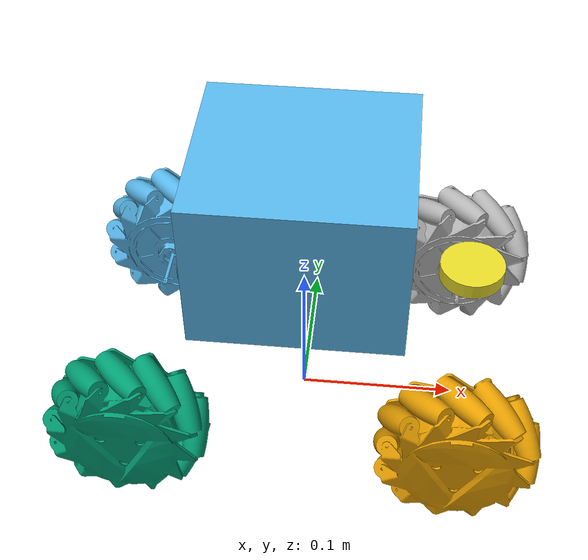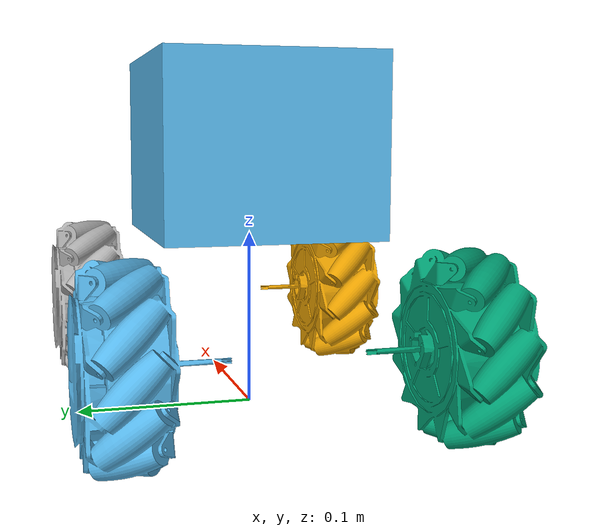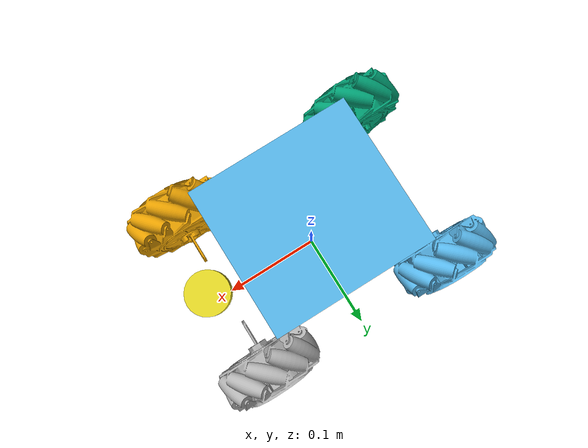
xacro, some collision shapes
<?xml version="1.0"?>

<robot name="limo_four_diff" xmlns:xacro="http://ros.org/wiki/xacro">

    <xacro:arg name="robot_name" default="box_bot"/>
    <xacro:property name="general_robot_name" value="$(arg robot_name)"/>

    <xacro:include filename="$(find limo_description)/urdf/limo_xacro_omni.xacro" />

    <!-- Variables -->
    <xacro:property name="M_PI" value="3.14159"/>

    <!-- Vehicle Geometries -->
    <xacro:property name="base_x_size" value="0.13" />
    <xacro:property name="base_y_size" value="0.12" />
    <xacro:property name="base_z_size" value="0.1" />

    <xacro:property name="wheelbase" value="0.2"/>
    <xacro:property name="track" value="0.13"/>
    <xacro:property name="wheel_vertical_offset" value="-0.10" />
    <xacro:property name="base_mass" value="2.1557"/>

    <xacro:property name="wheel_length" value="0.001" />
    <xacro:property name="wheel_radius" value="0.045" />
  <link name="base_footprint"/>

  <joint name="base_joint" type="fixed">
    <parent link="base_footprint"/>
    <child link="base_link"/>
    <origin xyz="0.0 0.0 0.15" rpy="0 0 0"/>
  </joint>
    <!-- Base link -->
    <link name="base_link">
        <visual>
            <origin xyz="0 0 -0.15" rpy="0 0 1.57" />
            <geometry>
                <mesh filename="package://limo_description/meshes/limo_optimal.dae" scale="1 1 1"/>
            </geometry>
        </visual>
        <collision>
            <origin xyz="0 0 0" rpy="0 0 0" />
          <geometry>
              <box size="${base_x_size} ${base_y_size} ${base_z_size}"/>
          </geometry>
        </collision>
    </link>

    <link name="inertial_link">
        <inertial>
            <origin xyz="0.0 0.0 0.0" />
            <mass value="${base_mass}" />
            <inertia ixx="0.0043832566666666675" ixy="0" ixz="0"
                     iyy="0.004832360833333334" iyz="0"
                     izz="0.005622784166666667" />
        </inertial>
    </link>

    <joint name="inertial_joint" type="fixed">
        <origin xyz="0 0 0" rpy="0 0 0" />
        <parent link="base_link" />
        <child link="inertial_link" />
    </joint>

    <xacro:limo_laser parent_prefix="base_link" frame_prefix="laser">
        <origin xyz="0.103 0 -0.034" rpy="0 0 0"/>
    </xacro:limo_laser>

    <xacro:limo_depth_camera parent_prefix="base_link" frame_prefix="depth_camera">
        <origin xyz="0.084 0 0.026" rpy="0 0 0"/>
    </xacro:limo_depth_camera>

    <xacro:limo_imu parent_prefix="base_link" frame_prefix="imu">
        <origin xyz="0.0 0 -0.1" rpy="0 0 0"/>
    </xacro:limo_imu>

    <xacro:limo_wheel parent_prefix="base_link" wheel_prefix="front_left" reflect="1" fixed_on="false">
        <origin xyz="${wheelbase/2} ${track/2} ${wheel_vertical_offset}" rpy="0 0  0" />
    </xacro:limo_wheel>

    <xacro:limo_wheel parent_prefix="base_link" wheel_prefix="front_right" reflect="-1" fixed_on="false">
        <origin xyz="${wheelbase/2} ${-track/2} ${wheel_vertical_offset}" rpy="${M_PI} 0 0" />
    </xacro:limo_wheel>

    <xacro:limo_wheel parent_prefix="base_link" wheel_prefix="rear_left" reflect="1" fixed_on="false">
        <origin xyz="${-wheelbase/2} ${track/2} ${wheel_vertical_offset}" rpy="0 0 0" />
    </xacro:limo_wheel>

    <xacro:limo_wheel parent_prefix="base_link" wheel_prefix="rear_right" reflect="-1" fixed_on="false">
        <origin xyz="${-wheelbase/2} ${-track/2} ${wheel_vertical_offset}" rpy="${M_PI} 0 0" />
    </xacro:limo_wheel>

    <gazebo reference="imu_link">
    <gravity>true</gravity>
    <sensor name="twr_imu_$(arg robot_name)" type="imu">
      <always_on>true</always_on>
      <update_rate>100</update_rate>
      <visualize>true</visualize>
      <imu>
        <orientation>
          <x>
            <noise type="gaussian">
              <mean>0.0</mean>
              <stddev>2e-3</stddev>
            </noise>
          </x>
          <y>
            <noise type="gaussian">
              <mean>0.0</mean>
              <stddev>2e-3</stddev>
            </noise>
          </y>
          <z>
            <noise type="gaussian">
              <mean>0.0</mean>
              <stddev>2e-3</stddev>
            </noise>
          </z>
        </orientation>
        <angular_velocity>
          <x>
            <noise type="gaussian">
              <mean>0.0</mean>
              <stddev>2e-4</stddev>
            </noise>
          </x>
          <y>
            <noise type="gaussian">
              <mean>0.0</mean>
              <stddev>2e-4</stddev>
            </noise>
          </y>
          <z>
            <noise type="gaussian">
              <mean>0.0</mean>
              <stddev>2e-4</stddev>
            </noise>
          </z>
        </angular_velocity>
        <linear_acceleration>
          <x>
            <noise type="gaussian">
              <mean>0.0</mean>
              <stddev>1.7e-2</stddev>
            </noise>
          </x>
          <y>
            <noise type="gaussian">
              <mean>0.0</mean>
              <stddev>1.7e-2</stddev>
            </noise>
          </y>
          <z>
            <noise type="gaussian">
              <mean>0.0</mean>
              <stddev>1.7e-2</stddev>
            </noise>
          </z>
        </linear_acceleration>
      </imu>
      <plugin name="two_wheeled_robot_imu_$(arg robot_name)" filename="libgazebo_ros_imu_sensor.so">
        <initial_orientation_as_reference>false</initial_orientation_as_reference>
        <frame_name>imu_link</frame_name>
        <ros>
          <remapping>~/out:=$(arg robot_name)/imu</remapping>
        </ros>
      </plugin>
    </sensor>
</gazebo>
<gazebo reference="laser_link">
    <sensor name="laser_$(arg robot_name)" type="ray">
      <always_on>true</always_on>
      <visualize>false</visualize>
      <update_rate>10</update_rate>
      <ray>
        <scan>
          <horizontal>
            <samples>120</samples>
            <resolution>1.000000</resolution>
            <min_angle>-3.14159</min_angle>
            <max_angle>3.14159</max_angle>
          </horizontal>
        </scan>
        <range>
          <min>0.3</min>
          <max>15.0</max>
          <resolution>0.015</resolution>
        </range>
        <noise>
          <type>gaussian</type>
          <mean>0.0</mean>
          <stddev>0.01</stddev>
        </noise>
      </ray>
      <plugin name="scan_$(arg robot_name)" filename="libgazebo_ros_ray_sensor.so">
        <ros>
          <remapping>~/out:=$(arg robot_name)/scan</remapping>
        </ros>
        <output_type>sensor_msgs/LaserScan</output_type>
        <frame_name>laser_link</frame_name>
      </plugin>
    </sensor>
  </gazebo>

    <gazebo reference="front_left_wheel_link">
        <mu1>0</mu1>
        <mu2>0</mu2>
        <kp>10000000.0</kp>
        <kd>1.0</kd>
        <minDepth>0.01</minDepth>
        <fdir1>1 0 0</fdir1>
        <maxContacts value="4"/>
    </gazebo>
    <gazebo reference="front_right_wheel_link">
        <mu1>0</mu1>
        <mu2>0</mu2>
        <kp>10000000.0</kp>
        <kd>1.0</kd>
        <minDepth>0.01</minDepth>
        <fdir1>1 0 0</fdir1>
        <maxContacts value="4"/>
    </gazebo>
    <gazebo reference="rear_left_wheel_link">
        <mu1>0</mu1>
        <mu2>0</mu2>
        <kp>10000000.0</kp>
        <kd>1.0</kd>
        <minDepth>0.01</minDepth>
        <fdir1>1 0 0</fdir1>
        <maxContacts value="4"/>
    </gazebo>
    <gazebo reference="rear_right_wheel_link">
        <mu1>0</mu1>
        <mu2>0</mu2>
        <kp>10000000.0</kp>
        <kd>1.0</kd>
        <minDepth>0.01</minDepth>
        <fdir1>1 0 0</fdir1>
        <maxContacts value="4"/>
    </gazebo>

    <gazebo reference="center_left_wheel_link">
        <mu1>0.0001</mu1>
        <mu2>0.0001</mu2>
        <kp>10000000.0</kp>
        <kd>1.0</kd>
        <minDepth>0.01</minDepth>
        <fdir1>1 0 0</fdir1>
        <maxContacts value="4"/>
    </gazebo>
    <gazebo reference="center_right_wheel_link">
        <mu1>0.0001</mu1>
        <mu2>0.0001</mu2>
        <kp>10000000.0</kp>
        <kd>1.0</kd>
        <minDepth>0.01</minDepth>
        <fdir1>1 0 0</fdir1>
        <maxContacts value="4"/>
    </gazebo>

    <gazebo>
      <plugin name="object_controller_$(arg robot_name)" filename="libgazebo_ros_planar_move.so">

        <commandTopic>cmd_vel</commandTopic>
        <odometryTopic>odom</odometryTopic>
        <robotNamespace>$(arg robot_name)</robotNamespace>

        <!-- Set control loop update rate -->
        <odometryRate>100</odometryRate>
        <!-- Set odom publish rate -->
        <publish_rate>100</publish_rate>

        <!-- Set if odom required -->
        <publish_odom>true</publish_odom>
        <publish_odom_tf>true</publish_odom_tf>

        <!-- Frame IDs -->
        <odometryFrame>odom</odometryFrame>
        <robotBaseFrame>base_link</robotBaseFrame>

        <!-- Set odom covariance -->
        <covariance_x>0.0001</covariance_x>
        <covariance_y>0.0001</covariance_y>
        <covariance_yaw>0.01</covariance_yaw>

        <ros>
            <namespace>$(arg robot_name)</namespace>
            <argument>--ros-args --remap /cmd_vel:=/$(arg robot_name)/cmd_vel /odom:=/$(arg robot_name)/odom</argument>
        </ros>

      </plugin>
    </gazebo>

    <gazebo>
        <plugin name="four_diff_controller_$(arg robot_name)" filename="libgazebo_ros_diff_drive.so">

        <update_rate>50</update_rate>
        <num_wheel_pairs>2</num_wheel_pairs>
        <left_joint>front_left_wheel</left_joint>
        <right_joint>front_right_wheel</right_joint>
        <left_joint>rear_left_wheel</left_joint>
        <right_joint>rear_right_wheel</right_joint>
        <wheel_separation>0.172</wheel_separation>
        <wheel_diameter>0.09</wheel_diameter>
        <max_wheel_torque>20</max_wheel_torque>
        <max_wheel_acceleration>1.0</max_wheel_acceleration>
        <command_topic>cmd_vel</command_topic>
        <publish_odom>false</publish_odom>
        <publish_odom_tf>false</publish_odom_tf>
        <publish_wheel_tf>true</publish_wheel_tf>
        <odometry_topic>odom</odometry_topic>
        <odometry_frame>odom</odometry_frame>
        <robot_base_frame>base_footprint</robot_base_frame>
        <odometry_source>1</odometry_source>
        <ros>
            <namespace>$(arg robot_name)</namespace>
            <argument>--ros-args --remap /cmd_vel:=/$(arg robot_name)/cmd_vel /odom:=/$(arg robot_name)/odom</argument>
        </ros>
        </plugin>
    </gazebo>

    <link name="camera_depth_optical_frame"/>

    <joint name="camera_depth_optical_joint" type="fixed">
      <origin xyz="0 0 0" rpy="${-M_PI/2} 0 ${-M_PI/2}" />
      <parent link="depth_camera_link" />
      <child link="camera_depth_optical_frame" />
    </joint>

<gazebo reference="depth_camera_link">
          <sensor name="sensor_camera" type="depth">
            <pose>0.0 0.0 0.0 0.0 0.0 0.0</pose>
            <always_on>1</always_on>
            <update_rate>10</update_rate>
            <visualize>1</visualize>

            <camera name="limo_camera">
              <image>
                <format>R8G8B8</format>
                <width>400</width>
                <height>400</height>
              </image>
              <clip>
                <near>0.01</near>
                <far>10.0</far>
              </clip>
            </camera>

            <plugin name="gazebo_ros_depth_camera_sensor_$(arg robot_name)" filename="libgazebo_ros_camera.so">

              <ros>
                <namespace>/$(arg robot_name)</namespace>
                <argument>limo_camera/image_raw:=limo_camera/image</argument>
                <argument>limo_camera/image_depth:=limo_camera/depth/camera_image_depth</argument>
                <argument>limo_camera/camera_info:=limo_camera/camera_info_raw</argument>
                <argument>limo_camera/camera_info_depth:=limo_camera/camera_info_depth</argument>
                <argument>limo_camera/points:=limo_camera/camera_points</argument>
              </ros>
              <camera_name>depth_camera_link</camera_name>
              <frame_name>camera_depth_optical_frame</frame_name>
              <hack_baseline>0.07</hack_baseline>
              <min_depth>0.001</min_depth>

            </plugin>
        </sensor>
          </gazebo>

</robot>

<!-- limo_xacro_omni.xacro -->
<robot name="limo_xacro" xmlns:xacro="http://ros.org/wiki/xacro">
    <xacro:macro name="limo_wheel" params="parent_prefix wheel_prefix reflect *joint_pose visual_on:=true fixed_on:=false">
        <link name="${wheel_prefix}_wheel_link">
            <inertial>
                <origin xyz="0 ${wheel_length/2} 0" rpy="1.57 0 0" />
                <mass value="0.5" />
                <inertia ixx="0.00033749999999999996" ixy="0" ixz="0" iyy="0.00033749999999999996" iyz="0" izz="0.00050625" />
            </inertial>
            <xacro:if value="${visual_on}">
                <visual>
                    <origin xyz="0 0 0" rpy="0 0 0" />
                    <geometry>
                        <mesh filename="package://limo_description/meshes/limo_optimal_wheels_omni.dae" />
                    </geometry>
                </visual>
            </xacro:if>
            <collision>
              <origin xyz="0 ${wheel_length/2} 0" rpy="1.57 0 0" />
              <geometry>
                  <cylinder length="${wheel_length}" radius="${wheel_radius}" />
              </geometry>
            </collision>
        </link>

        <!-- Conditionally set the joint type -->
        <xacro:if value="${fixed_on}">
            <joint name="${wheel_prefix}_wheel" type="fixed">
                <parent link="${parent_prefix}"/>
                <child link="${wheel_prefix}_wheel_link"/>
                <xacro:insert_block name="joint_pose"/>
            </joint>
        </xacro:if>
        <xacro:unless value="${fixed_on}">
            <joint name="${wheel_prefix}_wheel" type="continuous">
                <parent link="${parent_prefix}"/>
                <child link="${wheel_prefix}_wheel_link"/>
                <xacro:insert_block name="joint_pose"/>
                <axis xyz="0 ${reflect*1} 0"/>
                <limit effort="100.0" velocity="10.0"/>
            </joint>
        </xacro:unless>

    </xacro:macro>

    <xacro:macro name="limo_laser" params="parent_prefix frame_prefix *joint_pose">
        <link name='${frame_prefix}_link'>
            <pose>0 0 0 0 0 0</pose>
            <inertial>
                <mass value="0.1"/>
                <origin xyz="0.0 0 0" rpy="0 0 0"/>
                <inertia
                    ixx="1e-6" ixy="0" ixz="0"
                    iyy="1e-6" iyz="0"
                    izz="1e-6"
                />
            </inertial>
            <visual name='laser_visual'>
                <origin xyz="0 0 0" rpy="0 0 0"/>
                <geometry>
                    <cylinder radius="0.02" length="0.01"/>
                </geometry>
            </visual>
            <collision name='laser_collision'>
                <origin xyz="0 0 0" rpy="0 0 0"/>
                <geometry>
                    <cylinder radius="0.032" length="0.016"/>
                </geometry>
            </collision>
        </link>
        <joint type="fixed" name="laser_joint">
            <xacro:insert_block name="joint_pose"/>
            <child link="${frame_prefix}_link"/>
            <parent link="${parent_prefix}"/>
        </joint>
        <gazebo reference="${frame_prefix}_link">
            <material>Gazebo/Yellow</material>
        </gazebo>
    </xacro:macro>

    <xacro:macro name="limo_depth_camera" params="parent_prefix frame_prefix *joint_pose">
        <link name='${frame_prefix}_link'>
            <pose>0 0 0 0 0 0</pose>
            <inertial>
                <mass value="0.1"/>
                <origin xyz="0.0 0 0" rpy="0 0 0"/>
                <inertia
                    ixx="1e-6" ixy="0" ixz="0"
                    iyy="1e-6" iyz="0"
                    izz="1e-6"
                />
            </inertial>
            <collision name='depth_camera_collision'>
                <origin xyz="0 0 0" rpy="0 0 0"/>
                <geometry>
                    <box size="0.02 0.06 0.015"/>
                </geometry>
            </collision>

        </link>

        <joint type="fixed" name="depth_camera_joint">
            <xacro:insert_block name="joint_pose"/>
            <child link="${frame_prefix}_link"/>
            <parent link="${parent_prefix}"/>
        </joint>
        <link name="depth_link"></link>

        <joint name="${frame_prefix}_to_camera_joint" type="fixed">
            <origin xyz="0 0 0" rpy="${-M_PI/2} 0 ${-M_PI/2} "/>
            <parent link="${frame_prefix}_link"/>
            <child link="depth_link"/>
          </joint>

        <gazebo reference="${frame_prefix}_link">
            <material>Gazebo/Yellow</material>
        </gazebo>
    </xacro:macro>

    <xacro:macro name="limo_imu" params="parent_prefix frame_prefix  *joint_pose">
        <link name='${frame_prefix}_link'>
            <pose>0 0 0 0 0 0</pose>
            <inertial>
                <mass value="0.01"/>
                <origin xyz="0.0 0 0" rpy="0 0 0"/>
                <inertia
                    ixx="1e-7" ixy="0" ixz="0"
                    iyy="1e-7" iyz="0"
                    izz="1e-7"
                />
            </inertial>
            <visual name='imu_visual'>
                <origin xyz="0 0 0" rpy="0 0 0"/>
                <geometry>
                    <box size="0.001 0.001 0.001"/>
                </geometry>
            </visual>
            <collision name='imu_collision'>
                <origin xyz="0 0 0" rpy="0 0 0"/>
                <geometry>
                    <box size="0.001 0.001 0.001"/>
                </geometry>
            </collision>
        </link>
        <joint type="fixed" name="imu_joint">
            <xacro:insert_block name="joint_pose"/>
            <child link="${frame_prefix}_link"/>
            <parent link="${parent_prefix}"/>
        </joint>
        <gazebo reference="${frame_prefix}_link">
            <material>Gazebo/Yellow</material>
        </gazebo>
    </xacro:macro>
</robot>
